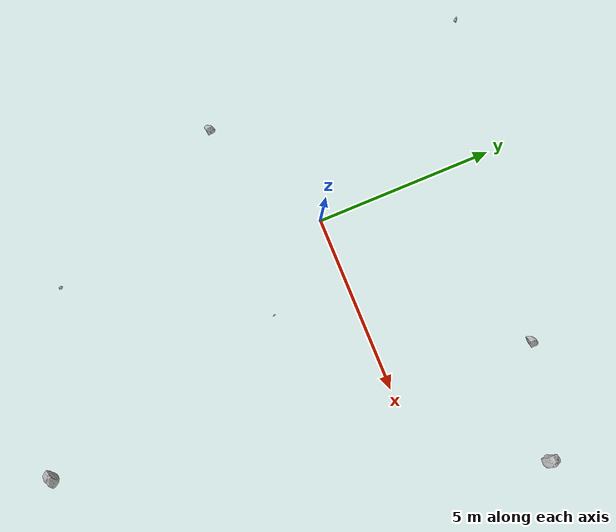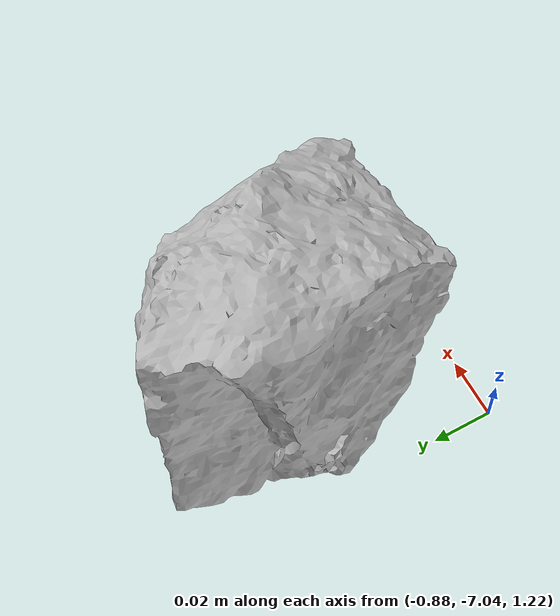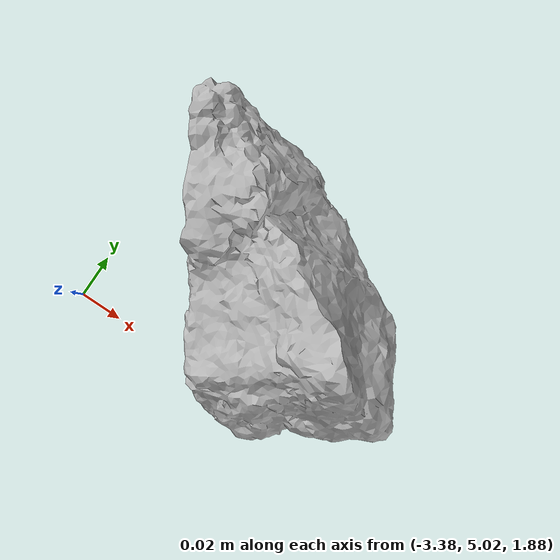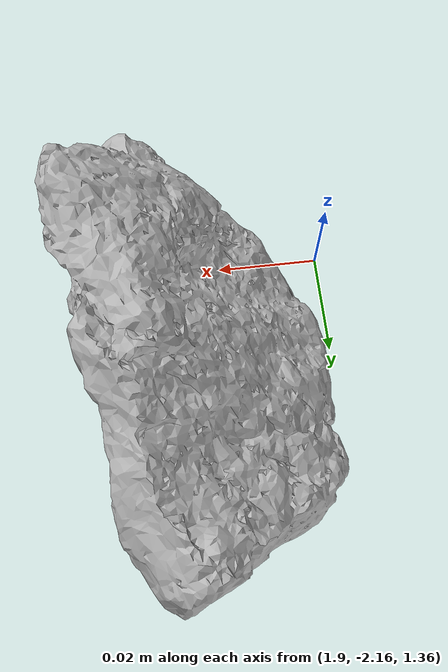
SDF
<sdf version="1.7">
 <world name="marsyard">
  <gravity>0 0 -9.81</gravity>
  <physics name="dart_physics" type="ignored">
   <max_step_size>0.003</max_step_size>
   <real_time_update_rate>333</real_time_update_rate>
   <real_time_factor>1.0</real_time_factor>
  </physics>
  <plugin filename="ignition-gazebo-physics-system" name="ignition::gazebo::systems::Physics"/>
  <plugin filename="ignition-gazebo-user-commands-system" name="ignition::gazebo::systems::UserCommands"/>
  <plugin filename="ignition-gazebo-scene-broadcaster-system" name="ignition::gazebo::systems::SceneBroadcaster"/>
  <plugin filename="ignition-gazebo-contact-system" name="ignition::gazebo::systems::Contact"/>
  <scene>
   <ambient>0.95 0.95 0.95 1</ambient>
   <background>0.70 0.70 0.70 1</background>
   <shadows>false</shadows>
  </scene>
  <light type="directional" name="sun">
   <cast_shadows>false</cast_shadows>
   <pose>0 0 30 0 0 0</pose>
   <diffuse>1 1 1 1</diffuse>
   <specular>0.15 0.15 0.15 1</specular>
   <direction>-0.35 0.1 -0.93</direction>
  </light>
  <model name="Rock_1">
   <static>true</static>
   <pose>1.9290 -2.1248 1.4026 0.0000 0.0000 1.7070</pose>
   <link name="link">
    <visual name="visual">
     <geometry><mesh><uri>package://rock_generator/rocks_ws/rock_5/meshes/rock_5.obj</uri></mesh></geometry>
    </visual>
    <collision name="collision">
     <geometry><mesh><uri>package://rock_generator/rocks_ws/rock_5/meshes/rock_5.obj</uri></mesh></geometry>
    </collision>
   </link>
  </model>
  <model name="Rock_2">
   <static>true</static>
   <pose>-0.8434 -6.9812 1.2764 0.0000 0.0000 1.8406</pose>
   <link name="link">
    <visual name="visual">
     <geometry><mesh><uri>package://rock_generator/rocks_ws/rock_9/meshes/rock_9.obj</uri></mesh></geometry>
    </visual>
    <collision name="collision">
     <geometry><mesh><uri>package://rock_generator/rocks_ws/rock_9/meshes/rock_9.obj</uri></mesh></geometry>
    </collision>
   </link>
  </model>
  <model name="Rock_4">
   <static>true</static>
   <pose>5.1158 3.7455 1.0381 0.0000 0.0000 -0.0239</pose>
   <link name="link">
    <visual name="visual">
     <geometry><mesh><uri>package://rock_generator/rocks_ws/rock_3/meshes/rock_3.obj</uri></mesh></geometry>
    </visual>
    <collision name="collision">
     <geometry><mesh><uri>package://rock_generator/rocks_ws/rock_3/meshes/rock_3.obj</uri></mesh></geometry>
    </collision>
   </link>
  </model>
  <model name="Rock_5">
   <static>true</static>
   <pose>8.2484 3.0371 1.0677 0.0000 0.0000 1.5810</pose>
   <link name="link">
    <visual name="visual">
     <geometry><mesh><uri>package://rock_generator/rocks_ws/rock_1/meshes/rock_1.obj</uri></mesh></geometry>
    </visual>
    <collision name="collision">
     <geometry><mesh><uri>package://rock_generator/rocks_ws/rock_1/meshes/rock_1.obj</uri></mesh></geometry>
    </collision>
   </link>
  </model>
  <model name="Rock_6">
   <static>true</static>
   <pose>-3.2878 -1.9616 0.9389 0.0000 0.0000 0.1453</pose>
   <link name="link">
    <visual name="visual">
     <geometry><mesh><uri>package://rock_generator/rocks_ws/rock_3/meshes/rock_3.obj</uri></mesh></geometry>
    </visual>
    <collision name="collision">
     <geometry><mesh><uri>package://rock_generator/rocks_ws/rock_3/meshes/rock_3.obj</uri></mesh></geometry>
    </collision>
   </link>
  </model>
  <model name="Rock_7">
   <static>true</static>
   <pose>-3.3090 5.0719 1.9258 0.0000 0.0000 2.4179</pose>
   <link name="link">
    <visual name="visual">
     <geometry><mesh><uri>package://rock_generator/rocks_ws/rock_6/meshes/rock_6.obj</uri></mesh></geometry>
    </visual>
   </link>
  </model>
  <model name="Rock_8">
   <static>true</static>
   <pose>3.5838 -8.9317 1.0921 0.0000 0.0000 -2.5716</pose>
   <link name="link">
    <visual name="visual">
     <geometry><mesh><uri>package://rock_generator/rocks_ws/rock_1/meshes/rock_1.obj</uri></mesh></geometry>
    </visual>
    <collision name="collision">
     <geometry><mesh><uri>package://rock_generator/rocks_ws/rock_1/meshes/rock_1.obj</uri></mesh></geometry>
    </collision>
   </link>
  </model>
 </world>
</sdf>
